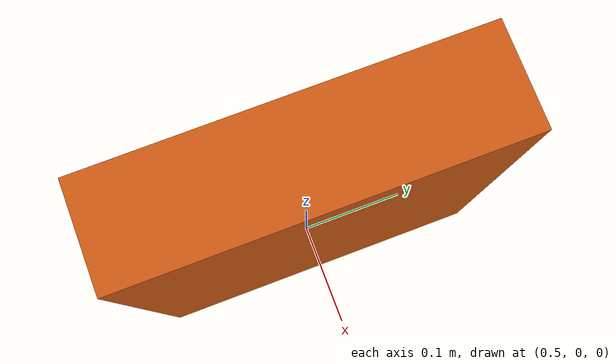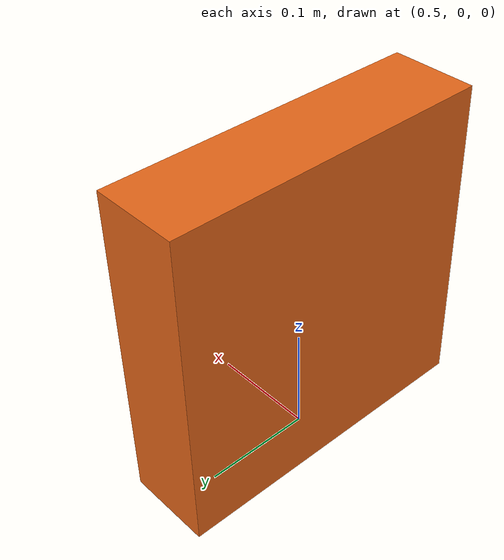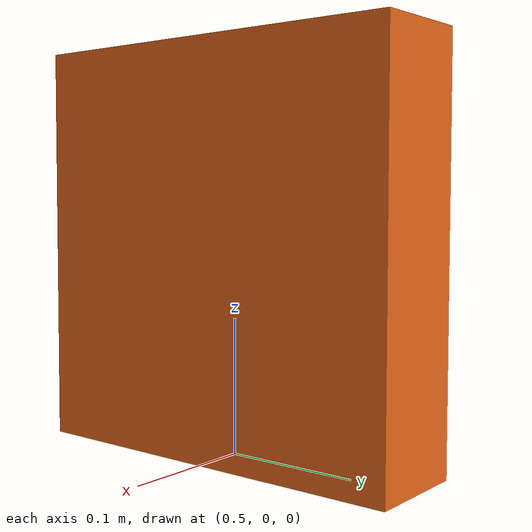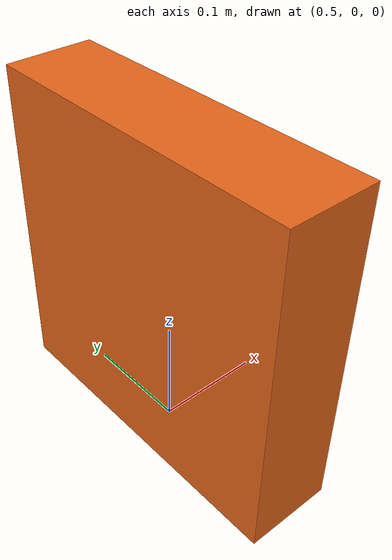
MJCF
<mujoco model="obstacle_block">
  <worldbody>
    <body name="obstacle_block" pos="0.5 0.0 0.15">
      <geom name="obstacle_block_geom" type="box" size="0.04 0.15 0.15"
            rgba="0.9 0.4 0.1 1" contype="1" conaffinity="1"/>
    </body>
    <!-- Multi-angle cameras for obstacle_reach diagnostics -->
    <camera name="overview" pos="0.0 -1.2 1.4" euler="55 0 0"/>
    <camera name="side" pos="-1.4 0.0 0.8" euler="0 -75 0"/>
    <camera name="top_down" pos="0.0 0.0 2.2" euler="90 0 0"/>
    <!-- Wrist camera approximates TCP view (static until MJCF body-attachment upgrade). -->
    <camera name="wrist" mode="fixed" pos="0.5 0.0 0.35" euler="90 0 180"/>
  </worldbody>
</mujoco>
